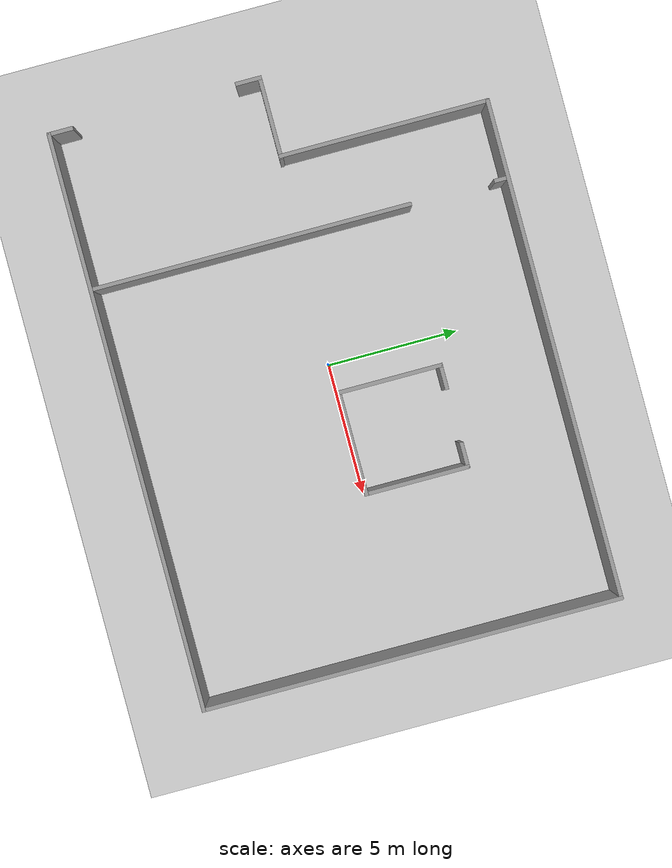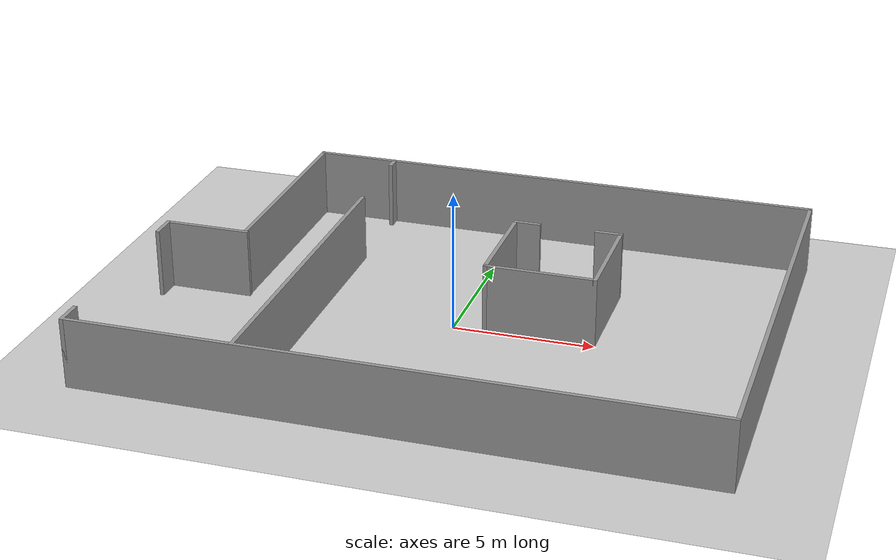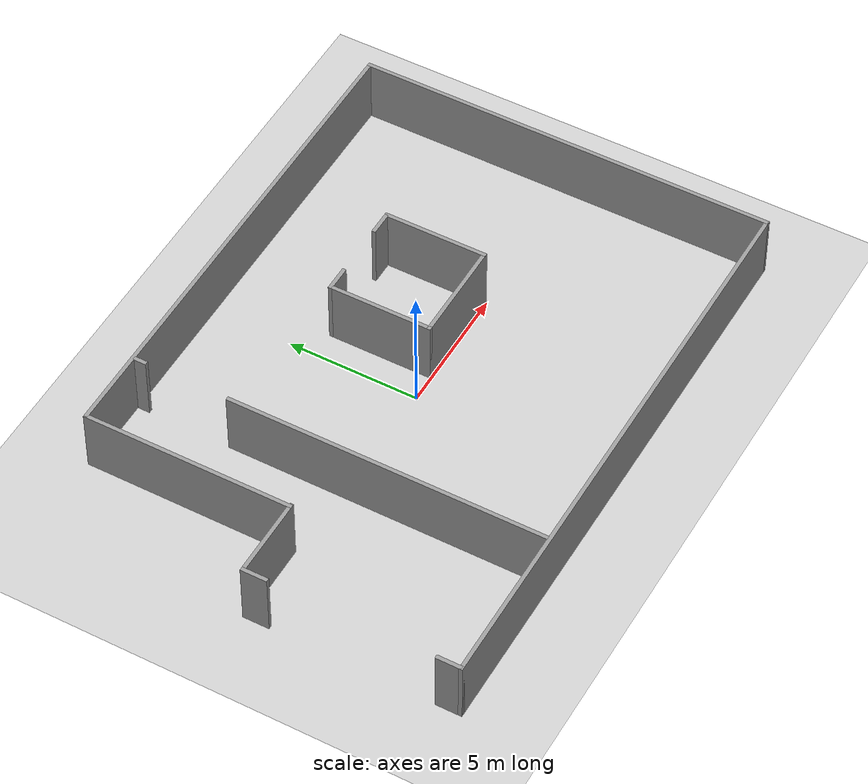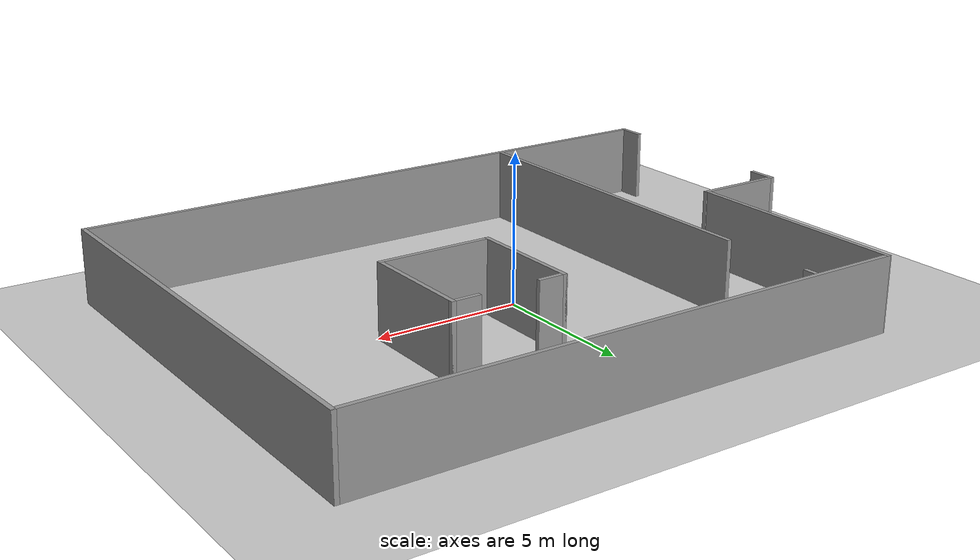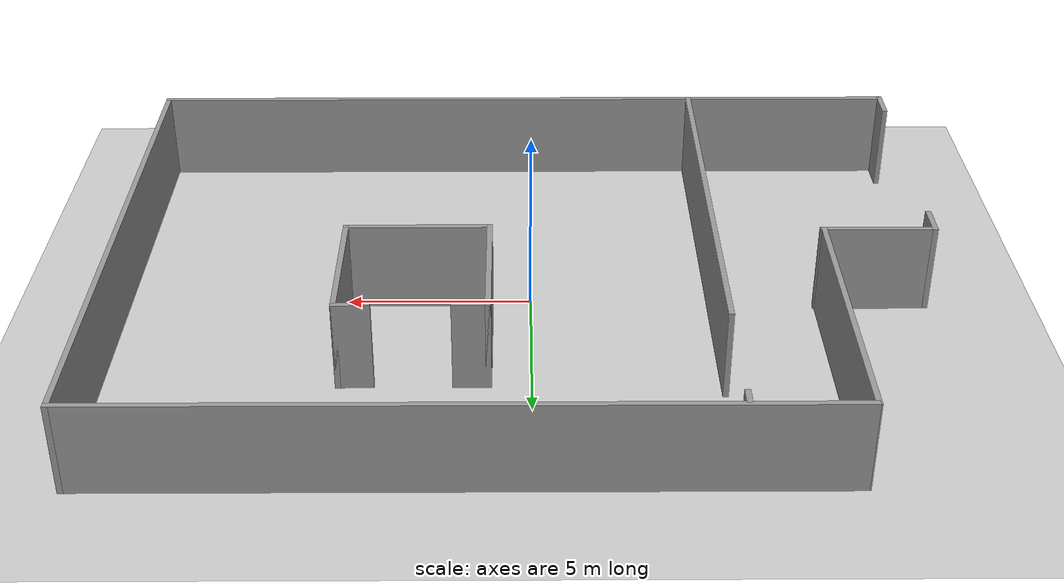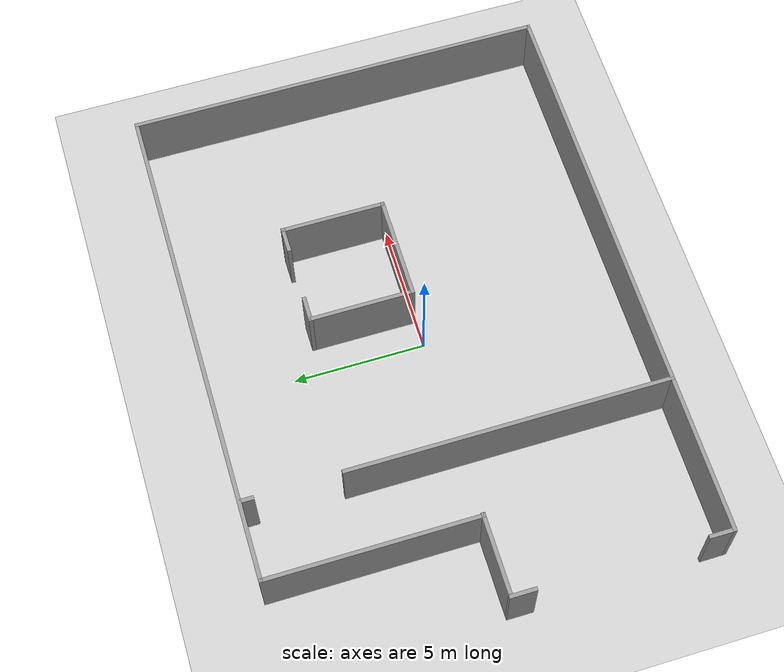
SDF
<sdf version="1.7">
 <world name="default">
  <light name="sun" type="directional">
   <pose>0 0 10 0 -0 0</pose>
   <diffuse>0.8 0.8 0.8 1</diffuse>
   <specular>0.2 0.2 0.2 1</specular>
   <attenuation>
    <range>1000</range>
    <constant>0.9</constant>
    <linear>0.01</linear>
    <quadratic>0.001</quadratic>
   </attenuation>
   <direction>-0.5 0.1 -0.9</direction>
   <spot><inner_angle>0</inner_angle><outer_angle>0</outer_angle><falloff>0</falloff></spot>
  </light>
  <model name="ground_plane">
   <static>1</static>
   <link name="link">
    <collision name="collision">
     <geometry><plane><normal>0 0 1</normal><size>100 100</size></plane></geometry>
     <surface>
      <contact><collide_bitmask>65535</collide_bitmask></contact>
      <friction><ode><mu>100</mu><mu2>50</mu2></ode></friction>
     </surface>
    </collision>
    <visual name="visual">
     <cast_shadows>0</cast_shadows>
     <geometry><plane><normal>0 0 1</normal><size>100 100</size></plane></geometry>
     <material>
      <script><uri>file://media/materials/scripts/gazebo.material</uri><name>Gazebo/Grey</name></script>
     </material>
    </visual>
   </link>
  </model>
  <gravity>0 0 -9.8</gravity>
  <magnetic_field>6e-06 2.3e-05 -4.2e-05</magnetic_field>
  <atmosphere type="adiabatic"/>
  <physics type="ode">
   <max_step_size>0.001</max_step_size>
   <real_time_factor>1</real_time_factor>
   <real_time_update_rate>1000</real_time_update_rate>
  </physics>
  <scene><ambient>0.4 0.4 0.4 1</ambient><background>0.7 0.7 0.7 1</background><shadows>1</shadows></scene>
  <spherical_coordinates>
   <surface_model>EARTH_WGS84</surface_model>
   <latitude_deg>0</latitude_deg>
   <longitude_deg>0</longitude_deg>
   <elevation>0</elevation>
   <heading_deg>0</heading_deg>
  </spherical_coordinates>
  <model name="wall_costmapEx">
   <pose>0.126849 0.22178 0 0 -0 0</pose>
   <link name="Wall_0">
    <collision name="Wall_0_Collision">
     <geometry><box><size>22 0.15 2.5</size></box></geometry>
     <pose>0 0 1.25 0 -0 0</pose>
    </collision>
    <visual name="Wall_0_Visual">
     <pose>0 0 1.25 0 -0 0</pose>
     <geometry><box><size>22 0.15 2.5</size></box></geometry>
     <material>
      <script><uri>file://media/materials/scripts/gazebo.material</uri><name>Gazebo/Grey</name></script>
      <ambient>1 1 1 1</ambient>
     </material>
     <meta><layer>0</layer></meta>
    </visual>
    <pose>0.000462 -7.925 0 0 -0 0</pose>
   </link>
   <link name="Wall_1">
    <collision name="Wall_1_Collision">
     <geometry><box><size>16 0.15 2.5</size></box></geometry>
     <pose>0 0 1.25 0 -0 0</pose>
    </collision>
    <visual name="Wall_1_Visual">
     <pose>0 0 1.25 0 -0 0</pose>
     <geometry><box><size>16 0.15 2.5</size></box></geometry>
     <material>
      <script><uri>file://media/materials/scripts/gazebo.material</uri><name>Gazebo/Grey</name></script>
      <ambient>1 1 1 1</ambient>
     </material>
     <meta><layer>0</layer></meta>
    </visual>
    <pose>10.9255 0 0 0 -0 1.5708</pose>
   </link>
   <link name="Wall_11">
    <collision name="Wall_11_Collision">
     <geometry><box><size>1 0.15 2.5</size></box></geometry>
     <pose>0 0 1.25 0 -0 0</pose>
    </collision>
    <visual name="Wall_11_Visual">
     <pose>0 0 1.25 0 -0 0</pose>
     <geometry><box><size>1 0.15 2.5</size></box></geometry>
     <material>
      <script><uri>file://media/materials/scripts/gazebo.material</uri><name>Gazebo/Grey</name></script>
      <ambient>1 1 1 1</ambient>
     </material>
     <meta><layer>0</layer></meta>
    </visual>
    <pose>1.39348 3.74312 0 0 -0 3.14159</pose>
   </link>
   <link name="Wall_12">
    <collision name="Wall_12_Collision">
     <geometry><box><size>4 0.15 2.5</size></box></geometry>
     <pose>0 0 1.25 0 -0 0</pose>
    </collision>
    <visual name="Wall_12_Visual">
     <pose>0 0 1.25 0 -0 0</pose>
     <geometry><box><size>4 0.15 2.5</size></box></geometry>
     <material>
      <script><uri>file://media/materials/scripts/gazebo.material</uri><name>Gazebo/Grey</name></script>
      <ambient>1 1 1 1</ambient>
     </material>
     <meta><layer>0</layer></meta>
    </visual>
    <pose>0.968482 1.81812 0 0 -0 -1.5708</pose>
   </link>
   <link name="Wall_13">
    <collision name="Wall_13_Collision">
     <geometry><box><size>4 0.15 2.5</size></box></geometry>
     <pose>0 0 1.25 0 -0 0</pose>
    </collision>
    <visual name="Wall_13_Visual">
     <pose>0 0 1.25 0 -0 0</pose>
     <geometry><box><size>4 0.15 2.5</size></box></geometry>
     <material>
      <script><uri>file://media/materials/scripts/gazebo.material</uri><name>Gazebo/Grey</name></script>
      <ambient>1 1 1 1</ambient>
     </material>
     <meta><layer>0</layer></meta>
    </visual>
    <pose>2.89348 -0.106881 0 0 -0 0</pose>
   </link>
   <link name="Wall_14">
    <collision name="Wall_14_Collision">
     <geometry><box><size>4 0.15 2.5</size></box></geometry>
     <pose>0 0 1.25 0 -0 0</pose>
    </collision>
    <visual name="Wall_14_Visual">
     <pose>0 0 1.25 0 -0 0</pose>
     <geometry><box><size>4 0.15 2.5</size></box></geometry>
     <material>
      <script><uri>file://media/materials/scripts/gazebo.material</uri><name>Gazebo/Grey</name></script>
      <ambient>1 1 1 1</ambient>
     </material>
     <meta><layer>0</layer></meta>
    </visual>
    <pose>4.81848 1.81812 0 0 -0 1.5708</pose>
   </link>
   <link name="Wall_15">
    <collision name="Wall_15_Collision">
     <geometry><box><size>1 0.15 2.5</size></box></geometry>
     <pose>0 0 1.25 0 -0 0</pose>
    </collision>
    <visual name="Wall_15_Visual">
     <pose>0 0 1.25 0 -0 0</pose>
     <geometry><box><size>1 0.15 2.5</size></box></geometry>
     <material>
      <script><uri>file://media/materials/scripts/gazebo.material</uri><name>Gazebo/Grey</name></script>
      <ambient>1 1 1 1</ambient>
     </material>
     <meta><layer>0</layer></meta>
    </visual>
    <pose>4.39348 3.74312 0 0 -0 3.14159</pose>
   </link>
   <link name="Wall_19">
    <collision name="Wall_19_Collision">
     <geometry><box><size>0.5 0.15 2.5</size></box></geometry>
     <pose>0 0 1.25 0 -0 0</pose>
    </collision>
    <visual name="Wall_19_Visual">
     <pose>0 0 1.25 0 -0 0</pose>
     <geometry><box><size>0.5 0.15 2.5</size></box></geometry>
     <material>
      <script><uri>file://media/materials/scripts/gazebo.material</uri><name>Gazebo/Grey</name></script>
      <ambient>1 1 1 1</ambient>
     </material>
     <meta><layer>0</layer></meta>
    </visual>
    <pose>-5.0382 7.64339 0 0 -0 -1.5708</pose>
   </link>
   <link name="Wall_2">
    <collision name="Wall_2_Collision">
     <geometry><box><size>19 0.15 2.5</size></box></geometry>
     <pose>0 0 1.25 0 -0 0</pose>
    </collision>
    <visual name="Wall_2_Visual">
     <pose>0 0 1.25 0 -0 0</pose>
     <geometry><box><size>19 0.15 2.5</size></box></geometry>
     <material>
      <script><uri>file://media/materials/scripts/gazebo.material</uri><name>Gazebo/Grey</name></script>
      <ambient>1 1 1 1</ambient>
     </material>
     <meta><layer>0</layer></meta>
    </visual>
    <pose>1.50046 7.925 0 0 -0 3.14159</pose>
   </link>
   <link name="Wall_22">
    <collision name="Wall_22_Collision">
     <geometry><box><size>12.25 0.15 2.5</size></box></geometry>
     <pose>0 0 1.25 0 -0 0</pose>
    </collision>
    <visual name="Wall_22_Visual">
     <pose>0 0 1.25 0 -0 0</pose>
     <geometry><box><size>12.25 0.15 2.5</size></box></geometry>
     <material>
      <script><uri>file://media/materials/scripts/gazebo.material</uri><name>Gazebo/Grey</name></script>
      <ambient>1 1 1 1</ambient>
     </material>
     <meta><layer>0</layer></meta>
    </visual>
    <pose>-5.02745 -1.86968 0 0 -0 1.5708</pose>
   </link>
   <link name="Wall_3">
    <collision name="Wall_3_Collision">
     <geometry><box><size>8 0.15 2.5</size></box></geometry>
     <pose>0 0 1.25 0 -0 0</pose>
    </collision>
    <visual name="Wall_3_Visual">
     <pose>0 0 1.25 0 -0 0</pose>
     <geometry><box><size>8 0.15 2.5</size></box></geometry>
     <material>
      <script><uri>file://media/materials/scripts/gazebo.material</uri><name>Gazebo/Grey</name></script>
      <ambient>1 1 1 1</ambient>
     </material>
     <meta><layer>0</layer></meta>
    </visual>
    <pose>-7.95952 4 0 0 -0 -1.5708</pose>
   </link>
   <link name="Wall_4">
    <collision name="Wall_4_Collision">
     <geometry><box><size>3 0.15 2.5</size></box></geometry>
     <pose>0 0 1.25 0 -0 0</pose>
    </collision>
    <visual name="Wall_4_Visual">
     <pose>0 0 1.25 0 -0 0</pose>
     <geometry><box><size>3 0.15 2.5</size></box></geometry>
     <material>
      <script><uri>file://media/materials/scripts/gazebo.material</uri><name>Gazebo/Grey</name></script>
      <ambient>1 1 1 1</ambient>
     </material>
     <meta><layer>0</layer></meta>
    </visual>
    <pose>-9.34954 0.075 0 0 -0 3.14159</pose>
   </link>
   <link name="Wall_6">
    <collision name="Wall_6_Collision">
     <geometry><box><size>1 0.15 2.5</size></box></geometry>
     <pose>0 0 1.25 0 -0 0</pose>
    </collision>
    <visual name="Wall_6_Visual">
     <pose>0 0 1.25 0 -0 0</pose>
     <geometry><box><size>1 0.15 2.5</size></box></geometry>
     <material>
      <script><uri>file://media/materials/scripts/gazebo.material</uri><name>Gazebo/Grey</name></script>
      <ambient>1 1 1 1</ambient>
     </material>
     <meta><layer>0</layer></meta>
    </visual>
    <pose>-10.9245 -7.5 0 0 -0 1.5708</pose>
   </link>
   <link name="Wall_9">
    <collision name="Wall_9_Collision">
     <geometry><box><size>1 0.15 2.5</size></box></geometry>
     <pose>0 0 1.25 0 -0 0</pose>
    </collision>
    <visual name="Wall_9_Visual">
     <pose>0 0 1.25 0 -0 0</pose>
     <geometry><box><size>1 0.15 2.5</size></box></geometry>
     <material>
      <script><uri>file://media/materials/scripts/gazebo.material</uri><name>Gazebo/Grey</name></script>
      <ambient>1 1 1 1</ambient>
     </material>
     <meta><layer>0</layer></meta>
    </visual>
    <pose>-10.9255 -0.351879 0 0 -0 1.5708</pose>
   </link>
   <static>1</static>
  </model>
  <model name="actor30_collision">
   <pose>-7 7 0 0 0 -1.57</pose>
   <link name="body">
    <pose>0 0 0.85 0 0 0</pose>
    <visual name="visual">
     <geometry><cylinder><radius>0.15</radius><length>1.7</length></cylinder></geometry>
     <transparency>1</transparency>
     <cast_shadows>0</cast_shadows>
    </visual>
    <collision name="collision">
     <geometry><cylinder><radius>0.15</radius><length>1.7</length></cylinder></geometry>
     <surface>
      <friction>
       <ode><mu>1</mu><mu2>1</mu2><fdir1>0 0 0</fdir1><slip1>0</slip1><slip2>0</slip2></ode>
       <torsional>
        <coefficient>1</coefficient>
        <patch_radius>0</patch_radius>
        <surface_radius>0</surface_radius>
        <use_patch_radius>1</use_patch_radius>
        <ode><slip>0</slip></ode>
       </torsional>
      </friction>
      <bounce><restitution_coefficient>0</restitution_coefficient><threshold>1e+06</threshold></bounce>
      <contact>
       <collide_without_contact>0</collide_without_contact>
       <collide_without_contact_bitmask>1</collide_without_contact_bitmask>
       <collide_bitmask>1</collide_bitmask>
       <ode>
        <soft_cfm>0</soft_cfm>
        <soft_erp>0.2</soft_erp>
        <kp>1e+13</kp>
        <kd>1</kd>
        <max_vel>0.01</max_vel>
        <min_depth>0</min_depth>
       </ode>
       <bullet>
        <split_impulse>1</split_impulse>
        <split_impulse_penetration_threshold>-0.01</split_impulse_penetration_threshold>
        <soft_cfm>0</soft_cfm>
        <soft_erp>0.2</soft_erp>
        <kp>1e+13</kp>
        <kd>1</kd>
       </bullet>
      </contact>
     </surface>
    </collision>
   </link>
   <static>0</static>
   <plugin name="actor30_collision_follower" filename="libgazebo_actor_pose_follower.so">
    <target>actor30</target>
   </plugin>
  </model>
  <model name="actor31_collision">
   <pose>-6 -7 0 0 0 1.57</pose>
   <link name="body">
    <pose>0 0 0.85 0 0 0</pose>
    <visual name="visual">
     <geometry><cylinder><radius>0.15</radius><length>1.7</length></cylinder></geometry>
     <transparency>1</transparency>
     <cast_shadows>0</cast_shadows>
    </visual>
    <collision name="collision">
     <geometry><cylinder><radius>0.15</radius><length>1.7</length></cylinder></geometry>
     <surface>
      <friction>
       <ode><mu>1</mu><mu2>1</mu2><fdir1>0 0 0</fdir1><slip1>0</slip1><slip2>0</slip2></ode>
       <torsional>
        <coefficient>1</coefficient>
        <patch_radius>0</patch_radius>
        <surface_radius>0</surface_radius>
        <use_patch_radius>1</use_patch_radius>
        <ode><slip>0</slip></ode>
       </torsional>
      </friction>
      <bounce><restitution_coefficient>0</restitution_coefficient><threshold>1e+06</threshold></bounce>
      <contact>
       <collide_without_contact>0</collide_without_contact>
       <collide_without_contact_bitmask>1</collide_without_contact_bitmask>
       <collide_bitmask>1</collide_bitmask>
       <ode>
        <soft_cfm>0</soft_cfm>
        <soft_erp>0.2</soft_erp>
        <kp>1e+13</kp>
        <kd>1</kd>
        <max_vel>0.01</max_vel>
        <min_depth>0</min_depth>
       </ode>
       <bullet>
        <split_impulse>1</split_impulse>
        <split_impulse_penetration_threshold>-0.01</split_impulse_penetration_threshold>
        <soft_cfm>0</soft_cfm>
        <soft_erp>0.2</soft_erp>
        <kp>1e+13</kp>
        <kd>1</kd>
       </bullet>
      </contact>
     </surface>
    </collision>
   </link>
   <static>0</static>
   <plugin name="actor31_collision_follower" filename="libgazebo_actor_pose_follower.so">
    <target>actor31</target>
   </plugin>
  </model>
  <model name="actor32_collision">
   <pose>-8 -1 0 0 0 -1.57</pose>
   <link name="body">
    <pose>0 0 0.85 0 0 0</pose>
    <visual name="visual">
     <geometry><cylinder><radius>0.15</radius><length>1.7</length></cylinder></geometry>
     <transparency>1</transparency>
     <cast_shadows>0</cast_shadows>
    </visual>
    <collision name="collision">
     <geometry><cylinder><radius>0.15</radius><length>1.7</length></cylinder></geometry>
     <surface>
      <friction>
       <ode><mu>1</mu><mu2>1</mu2><fdir1>0 0 0</fdir1><slip1>0</slip1><slip2>0</slip2></ode>
       <torsional>
        <coefficient>1</coefficient>
        <patch_radius>0</patch_radius>
        <surface_radius>0</surface_radius>
        <use_patch_radius>1</use_patch_radius>
        <ode><slip>0</slip></ode>
       </torsional>
      </friction>
      <bounce><restitution_coefficient>0</restitution_coefficient><threshold>1e+06</threshold></bounce>
      <contact>
       <collide_without_contact>0</collide_without_contact>
       <collide_without_contact_bitmask>1</collide_without_contact_bitmask>
       <collide_bitmask>1</collide_bitmask>
       <ode>
        <soft_cfm>0</soft_cfm>
        <soft_erp>0.2</soft_erp>
        <kp>1e+13</kp>
        <kd>1</kd>
        <max_vel>0.01</max_vel>
        <min_depth>0</min_depth>
       </ode>
       <bullet>
        <split_impulse>1</split_impulse>
        <split_impulse_penetration_threshold>-0.01</split_impulse_penetration_threshold>
        <soft_cfm>0</soft_cfm>
        <soft_erp>0.2</soft_erp>
        <kp>1e+13</kp>
        <kd>1</kd>
       </bullet>
      </contact>
     </surface>
    </collision>
   </link>
   <static>0</static>
   <plugin name="actor32_collision_follower" filename="libgazebo_actor_pose_follower.so">
    <target>actor32</target>
   </plugin>
  </model>
  <model name="actor33_collision">
   <pose>-9 -7 0 0 0 1.57</pose>
   <link name="body">
    <pose>0 0 0.85 0 0 0</pose>
    <visual name="visual">
     <geometry><cylinder><radius>0.15</radius><length>1.7</length></cylinder></geometry>
     <transparency>1</transparency>
     <cast_shadows>0</cast_shadows>
    </visual>
    <collision name="collision">
     <geometry><cylinder><radius>0.15</radius><length>1.7</length></cylinder></geometry>
     <surface>
      <friction>
       <ode><mu>1</mu><mu2>1</mu2><fdir1>0 0 0</fdir1><slip1>0</slip1><slip2>0</slip2></ode>
       <torsional>
        <coefficient>1</coefficient>
        <patch_radius>0</patch_radius>
        <surface_radius>0</surface_radius>
        <use_patch_radius>1</use_patch_radius>
        <ode><slip>0</slip></ode>
       </torsional>
      </friction>
      <bounce><restitution_coefficient>0</restitution_coefficient><threshold>1e+06</threshold></bounce>
      <contact>
       <collide_without_contact>0</collide_without_contact>
       <collide_without_contact_bitmask>1</collide_without_contact_bitmask>
       <collide_bitmask>1</collide_bitmask>
       <ode>
        <soft_cfm>0</soft_cfm>
        <soft_erp>0.2</soft_erp>
        <kp>1e+13</kp>
        <kd>1</kd>
        <max_vel>0.01</max_vel>
        <min_depth>0</min_depth>
       </ode>
       <bullet>
        <split_impulse>1</split_impulse>
        <split_impulse_penetration_threshold>-0.01</split_impulse_penetration_threshold>
        <soft_cfm>0</soft_cfm>
        <soft_erp>0.2</soft_erp>
        <kp>1e+13</kp>
        <kd>1</kd>
       </bullet>
      </contact>
     </surface>
    </collision>
   </link>
   <static>0</static>
   <plugin name="actor33_collision_follower" filename="libgazebo_actor_pose_follower.so">
    <target>actor33</target>
   </plugin>
  </model>
 </world>
</sdf>
